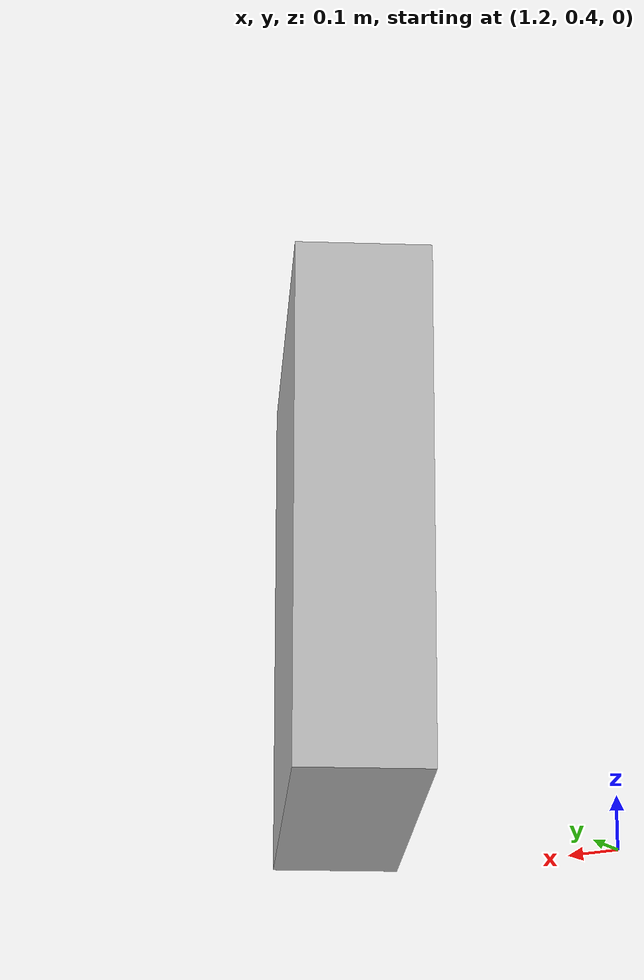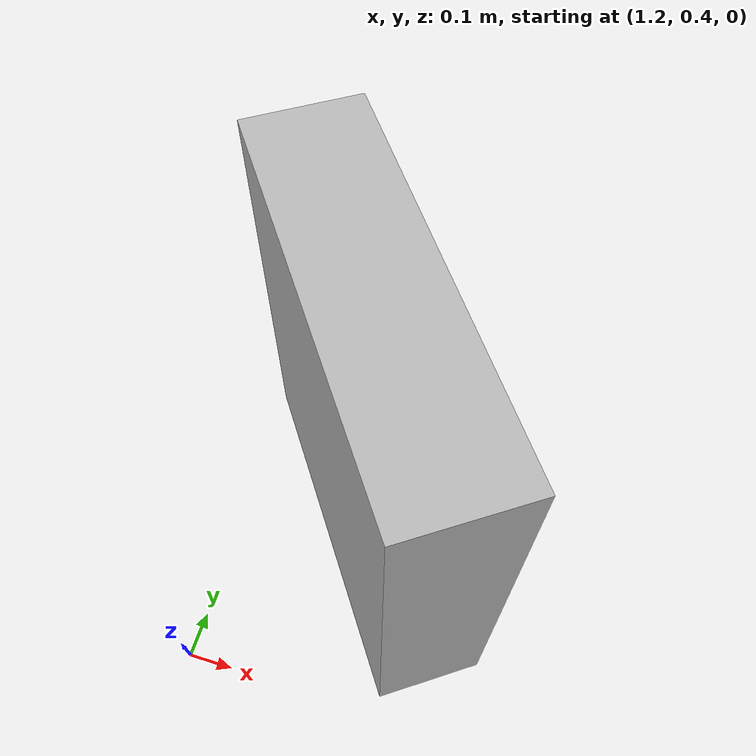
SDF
<?xml version='1.0'?>
  <sdf version='1.6'>
    <model name="Object2">
      <static>false</static>

      <link name='cube'>
        <pose>1.5 0.84 0.45 0 0 0.6</pose>

        <collision name='collision'>
          <geometry>
            <box>
              <size>.23 .82 .9</size>
            </box>
          </geometry>
        </collision>

        <surface>
          <friction>
            <ode>
              <mu>1</mu>
              <mu2>1</mu2>
              <slip1>1.0</slip1>
              <slip2>1.0</slip2>
            </ode>
          </friction>
        </surface>

        <visual name='visual'>
          <geometry>
            <box>
              <size>.23 .82 .9</size>
            </box>
          </geometry>
        </visual>
      </link>

    </model>
  </sdf>
